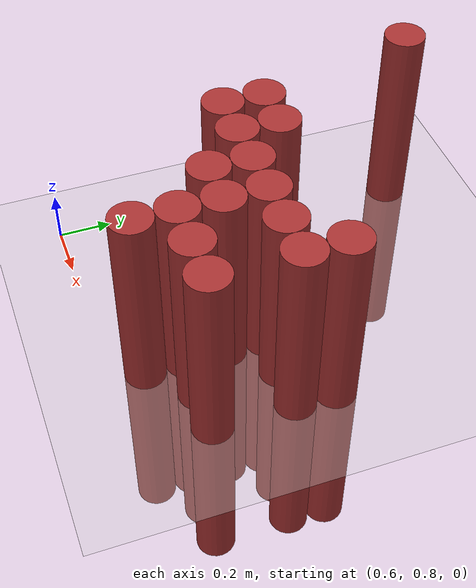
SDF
<sdf version="1.6">
 <world name="default">
  <model name="ground_plane">
   <static>1</static>
   <link name="link">
    <collision name="collision">
     <geometry><plane><normal>0 0 1</normal><size>100 100</size></plane></geometry>
     <surface><friction><ode><mu>100</mu><mu2>50</mu2></ode></friction></surface>
    </collision>
    <visual name="visual">
     <cast_shadows>0</cast_shadows>
     <geometry><plane><normal>0 0 1</normal><size>100 100</size></plane></geometry>
     <material>
      <script><uri>file://media/materials/scripts/gazebo.material</uri><name>Gazebo/Grey</name></script>
     </material>
    </visual>
   </link>
  </model>
  <model name="unit_cylinder_176">
   <static>1</static>
   <pose>0.775000 2.125000 0.000000 0.000000 0.000000 0.000000</pose>
   <link name="link">
    <inertial>
     <mass>1</mass>
     <inertia><ixx>0.145833</ixx><ixy>0</ixy><ixz>0</ixz><iyy>0.145833</iyy><iyz>0</iyz><izz>0.125</izz></inertia>
    </inertial>
    <collision name="collision">
     <geometry><cylinder><radius>0.075000</radius><length>1.5</length></cylinder></geometry>
    </collision>
    <visual name="visual">
     <geometry><cylinder><radius>0.075000</radius><length>1.5</length></cylinder></geometry>
     <material>
      <ambient>0.648000 0.192000 0.192000 1</ambient>
      <diffuse>0.648000 0.192000 0.192000 1</diffuse>
     </material>
     <material>
      <script><name>Gazebo/Grey</name><uri>file://media/materials/scripts/gazebo.material</uri></script>
     </material>
    </visual>
   </link>
  </model>
  <model name="unit_cylinder_179">
   <static>1</static>
   <pose>0.925000 1.375000 0.000000 0.000000 0.000000 0.000000</pose>
   <link name="link">
    <inertial>
     <mass>1</mass>
     <inertia><ixx>0.145833</ixx><ixy>0</ixy><ixz>0</ixz><iyy>0.145833</iyy><iyz>0</iyz><izz>0.125</izz></inertia>
    </inertial>
    <collision name="collision">
     <geometry><cylinder><radius>0.075000</radius><length>1.5</length></cylinder></geometry>
    </collision>
    <visual name="visual">
     <geometry><cylinder><radius>0.075000</radius><length>1.5</length></cylinder></geometry>
     <material>
      <ambient>0.648000 0.192000 0.192000 1</ambient>
      <diffuse>0.648000 0.192000 0.192000 1</diffuse>
     </material>
     <material>
      <script><name>Gazebo/Grey</name><uri>file://media/materials/scripts/gazebo.material</uri></script>
     </material>
    </visual>
   </link>
  </model>
  <model name="unit_cylinder_180">
   <static>1</static>
   <pose>0.925000 1.525000 0.000000 0.000000 0.000000 0.000000</pose>
   <link name="link">
    <inertial>
     <mass>1</mass>
     <inertia><ixx>0.145833</ixx><ixy>0</ixy><ixz>0</ixz><iyy>0.145833</iyy><iyz>0</iyz><izz>0.125</izz></inertia>
    </inertial>
    <collision name="collision">
     <geometry><cylinder><radius>0.075000</radius><length>1.5</length></cylinder></geometry>
    </collision>
    <visual name="visual">
     <geometry><cylinder><radius>0.075000</radius><length>1.5</length></cylinder></geometry>
     <material>
      <ambient>0.648000 0.192000 0.192000 1</ambient>
      <diffuse>0.648000 0.192000 0.192000 1</diffuse>
     </material>
     <material>
      <script><name>Gazebo/Grey</name><uri>file://media/materials/scripts/gazebo.material</uri></script>
     </material>
    </visual>
   </link>
  </model>
  <model name="unit_cylinder_181">
   <static>1</static>
   <pose>1.075000 1.375000 0.000000 0.000000 0.000000 0.000000</pose>
   <link name="link">
    <inertial>
     <mass>1</mass>
     <inertia><ixx>0.145833</ixx><ixy>0</ixy><ixz>0</ixz><iyy>0.145833</iyy><iyz>0</iyz><izz>0.125</izz></inertia>
    </inertial>
    <collision name="collision">
     <geometry><cylinder><radius>0.075000</radius><length>1.5</length></cylinder></geometry>
    </collision>
    <visual name="visual">
     <geometry><cylinder><radius>0.075000</radius><length>1.5</length></cylinder></geometry>
     <material>
      <ambient>0.648000 0.192000 0.192000 1</ambient>
      <diffuse>0.648000 0.192000 0.192000 1</diffuse>
     </material>
     <material>
      <script><name>Gazebo/Grey</name><uri>file://media/materials/scripts/gazebo.material</uri></script>
     </material>
    </visual>
   </link>
  </model>
  <model name="unit_cylinder_182">
   <static>1</static>
   <pose>1.075000 1.525000 0.000000 0.000000 0.000000 0.000000</pose>
   <link name="link">
    <inertial>
     <mass>1</mass>
     <inertia><ixx>0.145833</ixx><ixy>0</ixy><ixz>0</ixz><iyy>0.145833</iyy><iyz>0</iyz><izz>0.125</izz></inertia>
    </inertial>
    <collision name="collision">
     <geometry><cylinder><radius>0.075000</radius><length>1.5</length></cylinder></geometry>
    </collision>
    <visual name="visual">
     <geometry><cylinder><radius>0.075000</radius><length>1.5</length></cylinder></geometry>
     <material>
      <ambient>0.648000 0.192000 0.192000 1</ambient>
      <diffuse>0.648000 0.192000 0.192000 1</diffuse>
     </material>
     <material>
      <script><name>Gazebo/Grey</name><uri>file://media/materials/scripts/gazebo.material</uri></script>
     </material>
    </visual>
   </link>
  </model>
  <model name="unit_cylinder_184">
   <static>1</static>
   <pose>1.225000 1.225000 0.000000 0.000000 0.000000 0.000000</pose>
   <link name="link">
    <inertial>
     <mass>1</mass>
     <inertia><ixx>0.145833</ixx><ixy>0</ixy><ixz>0</ixz><iyy>0.145833</iyy><iyz>0</iyz><izz>0.125</izz></inertia>
    </inertial>
    <collision name="collision">
     <geometry><cylinder><radius>0.075000</radius><length>1.5</length></cylinder></geometry>
    </collision>
    <visual name="visual">
     <geometry><cylinder><radius>0.075000</radius><length>1.5</length></cylinder></geometry>
     <material>
      <ambient>0.648000 0.192000 0.192000 1</ambient>
      <diffuse>0.648000 0.192000 0.192000 1</diffuse>
     </material>
     <material>
      <script><name>Gazebo/Grey</name><uri>file://media/materials/scripts/gazebo.material</uri></script>
     </material>
    </visual>
   </link>
  </model>
  <model name="unit_cylinder_185">
   <static>1</static>
   <pose>1.225000 1.375000 0.000000 0.000000 0.000000 0.000000</pose>
   <link name="link">
    <inertial>
     <mass>1</mass>
     <inertia><ixx>0.145833</ixx><ixy>0</ixy><ixz>0</ixz><iyy>0.145833</iyy><iyz>0</iyz><izz>0.125</izz></inertia>
    </inertial>
    <collision name="collision">
     <geometry><cylinder><radius>0.075000</radius><length>1.5</length></cylinder></geometry>
    </collision>
    <visual name="visual">
     <geometry><cylinder><radius>0.075000</radius><length>1.5</length></cylinder></geometry>
     <material>
      <ambient>0.648000 0.192000 0.192000 1</ambient>
      <diffuse>0.648000 0.192000 0.192000 1</diffuse>
     </material>
     <material>
      <script><name>Gazebo/Grey</name><uri>file://media/materials/scripts/gazebo.material</uri></script>
     </material>
    </visual>
   </link>
  </model>
  <model name="unit_cylinder_187">
   <static>1</static>
   <pose>1.375000 0.925000 0.000000 0.000000 0.000000 0.000000</pose>
   <link name="link">
    <inertial>
     <mass>1</mass>
     <inertia><ixx>0.145833</ixx><ixy>0</ixy><ixz>0</ixz><iyy>0.145833</iyy><iyz>0</iyz><izz>0.125</izz></inertia>
    </inertial>
    <collision name="collision">
     <geometry><cylinder><radius>0.075000</radius><length>1.5</length></cylinder></geometry>
    </collision>
    <visual name="visual">
     <geometry><cylinder><radius>0.075000</radius><length>1.5</length></cylinder></geometry>
     <material>
      <ambient>0.648000 0.192000 0.192000 1</ambient>
      <diffuse>0.648000 0.192000 0.192000 1</diffuse>
     </material>
     <material>
      <script><name>Gazebo/Grey</name><uri>file://media/materials/scripts/gazebo.material</uri></script>
     </material>
    </visual>
   </link>
  </model>
  <model name="unit_cylinder_188">
   <static>1</static>
   <pose>1.375000 1.075000 0.000000 0.000000 0.000000 0.000000</pose>
   <link name="link">
    <inertial>
     <mass>1</mass>
     <inertia><ixx>0.145833</ixx><ixy>0</ixy><ixz>0</ixz><iyy>0.145833</iyy><iyz>0</iyz><izz>0.125</izz></inertia>
    </inertial>
    <collision name="collision">
     <geometry><cylinder><radius>0.075000</radius><length>1.5</length></cylinder></geometry>
    </collision>
    <visual name="visual">
     <geometry><cylinder><radius>0.075000</radius><length>1.5</length></cylinder></geometry>
     <material>
      <ambient>0.648000 0.192000 0.192000 1</ambient>
      <diffuse>0.648000 0.192000 0.192000 1</diffuse>
     </material>
     <material>
      <script><name>Gazebo/Grey</name><uri>file://media/materials/scripts/gazebo.material</uri></script>
     </material>
    </visual>
   </link>
  </model>
  <model name="unit_cylinder_189">
   <static>1</static>
   <pose>1.375000 1.225000 0.000000 0.000000 0.000000 0.000000</pose>
   <link name="link">
    <inertial>
     <mass>1</mass>
     <inertia><ixx>0.145833</ixx><ixy>0</ixy><ixz>0</ixz><iyy>0.145833</iyy><iyz>0</iyz><izz>0.125</izz></inertia>
    </inertial>
    <collision name="collision">
     <geometry><cylinder><radius>0.075000</radius><length>1.5</length></cylinder></geometry>
    </collision>
    <visual name="visual">
     <geometry><cylinder><radius>0.075000</radius><length>1.5</length></cylinder></geometry>
     <material>
      <ambient>0.648000 0.192000 0.192000 1</ambient>
      <diffuse>0.648000 0.192000 0.192000 1</diffuse>
     </material>
     <material>
      <script><name>Gazebo/Grey</name><uri>file://media/materials/scripts/gazebo.material</uri></script>
     </material>
    </visual>
   </link>
  </model>
  <model name="unit_cylinder_190">
   <static>1</static>
   <pose>1.375000 1.375000 0.000000 0.000000 0.000000 0.000000</pose>
   <link name="link">
    <inertial>
     <mass>1</mass>
     <inertia><ixx>0.145833</ixx><ixy>0</ixy><ixz>0</ixz><iyy>0.145833</iyy><iyz>0</iyz><izz>0.125</izz></inertia>
    </inertial>
    <collision name="collision">
     <geometry><cylinder><radius>0.075000</radius><length>1.5</length></cylinder></geometry>
    </collision>
    <visual name="visual">
     <geometry><cylinder><radius>0.075000</radius><length>1.5</length></cylinder></geometry>
     <material>
      <ambient>0.648000 0.192000 0.192000 1</ambient>
      <diffuse>0.648000 0.192000 0.192000 1</diffuse>
     </material>
     <material>
      <script><name>Gazebo/Grey</name><uri>file://media/materials/scripts/gazebo.material</uri></script>
     </material>
    </visual>
   </link>
  </model>
  <model name="unit_cylinder_196">
   <static>1</static>
   <pose>1.525000 1.075000 0.000000 0.000000 0.000000 0.000000</pose>
   <link name="link">
    <inertial>
     <mass>1</mass>
     <inertia><ixx>0.145833</ixx><ixy>0</ixy><ixz>0</ixz><iyy>0.145833</iyy><iyz>0</iyz><izz>0.125</izz></inertia>
    </inertial>
    <collision name="collision">
     <geometry><cylinder><radius>0.075000</radius><length>1.5</length></cylinder></geometry>
    </collision>
    <visual name="visual">
     <geometry><cylinder><radius>0.075000</radius><length>1.5</length></cylinder></geometry>
     <material>
      <ambient>0.648000 0.192000 0.192000 1</ambient>
      <diffuse>0.648000 0.192000 0.192000 1</diffuse>
     </material>
     <material>
      <script><name>Gazebo/Grey</name><uri>file://media/materials/scripts/gazebo.material</uri></script>
     </material>
    </visual>
   </link>
  </model>
  <model name="unit_cylinder_197">
   <static>1</static>
   <pose>1.525000 1.375000 0.000000 0.000000 0.000000 0.000000</pose>
   <link name="link">
    <inertial>
     <mass>1</mass>
     <inertia><ixx>0.145833</ixx><ixy>0</ixy><ixz>0</ixz><iyy>0.145833</iyy><iyz>0</iyz><izz>0.125</izz></inertia>
    </inertial>
    <collision name="collision">
     <geometry><cylinder><radius>0.075000</radius><length>1.5</length></cylinder></geometry>
    </collision>
    <visual name="visual">
     <geometry><cylinder><radius>0.075000</radius><length>1.5</length></cylinder></geometry>
     <material>
      <ambient>0.648000 0.192000 0.192000 1</ambient>
      <diffuse>0.648000 0.192000 0.192000 1</diffuse>
     </material>
     <material>
      <script><name>Gazebo/Grey</name><uri>file://media/materials/scripts/gazebo.material</uri></script>
     </material>
    </visual>
   </link>
  </model>
  <model name="unit_cylinder_202">
   <static>1</static>
   <pose>1.675000 1.075000 0.000000 0.000000 0.000000 0.000000</pose>
   <link name="link">
    <inertial>
     <mass>1</mass>
     <inertia><ixx>0.145833</ixx><ixy>0</ixy><ixz>0</ixz><iyy>0.145833</iyy><iyz>0</iyz><izz>0.125</izz></inertia>
    </inertial>
    <collision name="collision">
     <geometry><cylinder><radius>0.075000</radius><length>1.5</length></cylinder></geometry>
    </collision>
    <visual name="visual">
     <geometry><cylinder><radius>0.075000</radius><length>1.5</length></cylinder></geometry>
     <material>
      <ambient>0.648000 0.192000 0.192000 1</ambient>
      <diffuse>0.648000 0.192000 0.192000 1</diffuse>
     </material>
     <material>
      <script><name>Gazebo/Grey</name><uri>file://media/materials/scripts/gazebo.material</uri></script>
     </material>
    </visual>
   </link>
  </model>
  <model name="unit_cylinder_203">
   <static>1</static>
   <pose>1.675000 1.375000 0.000000 0.000000 0.000000 0.000000</pose>
   <link name="link">
    <inertial>
     <mass>1</mass>
     <inertia><ixx>0.145833</ixx><ixy>0</ixy><ixz>0</ixz><iyy>0.145833</iyy><iyz>0</iyz><izz>0.125</izz></inertia>
    </inertial>
    <collision name="collision">
     <geometry><cylinder><radius>0.075000</radius><length>1.5</length></cylinder></geometry>
    </collision>
    <visual name="visual">
     <geometry><cylinder><radius>0.075000</radius><length>1.5</length></cylinder></geometry>
     <material>
      <ambient>0.648000 0.192000 0.192000 1</ambient>
      <diffuse>0.648000 0.192000 0.192000 1</diffuse>
     </material>
     <material>
      <script><name>Gazebo/Grey</name><uri>file://media/materials/scripts/gazebo.material</uri></script>
     </material>
    </visual>
   </link>
  </model>
  <model name="unit_cylinder_204">
   <static>1</static>
   <pose>1.675000 1.525000 0.000000 0.000000 0.000000 0.000000</pose>
   <link name="link">
    <inertial>
     <mass>1</mass>
     <inertia><ixx>0.145833</ixx><ixy>0</ixy><ixz>0</ixz><iyy>0.145833</iyy><iyz>0</iyz><izz>0.125</izz></inertia>
    </inertial>
    <collision name="collision">
     <geometry><cylinder><radius>0.075000</radius><length>1.5</length></cylinder></geometry>
    </collision>
    <visual name="visual">
     <geometry><cylinder><radius>0.075000</radius><length>1.5</length></cylinder></geometry>
     <material>
      <ambient>0.648000 0.192000 0.192000 1</ambient>
      <diffuse>0.648000 0.192000 0.192000 1</diffuse>
     </material>
     <material>
      <script><name>Gazebo/Grey</name><uri>file://media/materials/scripts/gazebo.material</uri></script>
     </material>
    </visual>
   </link>
  </model>
 </world>
</sdf>
